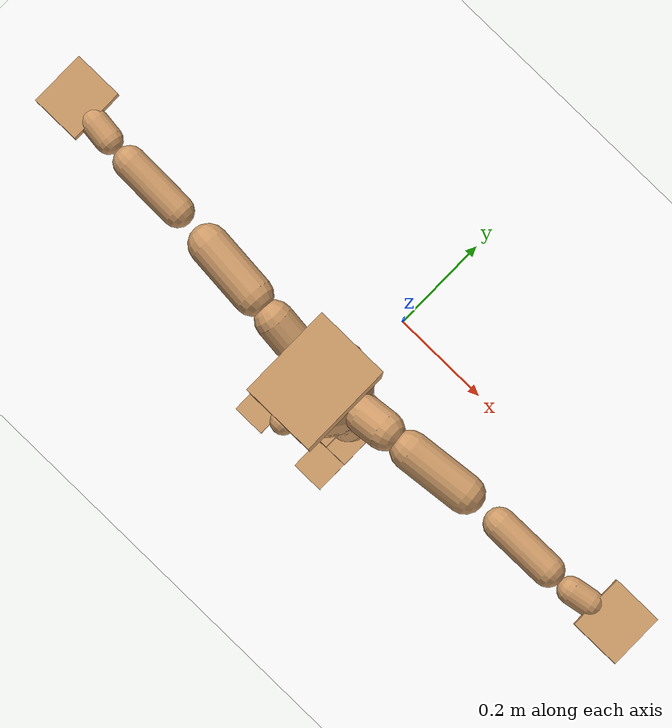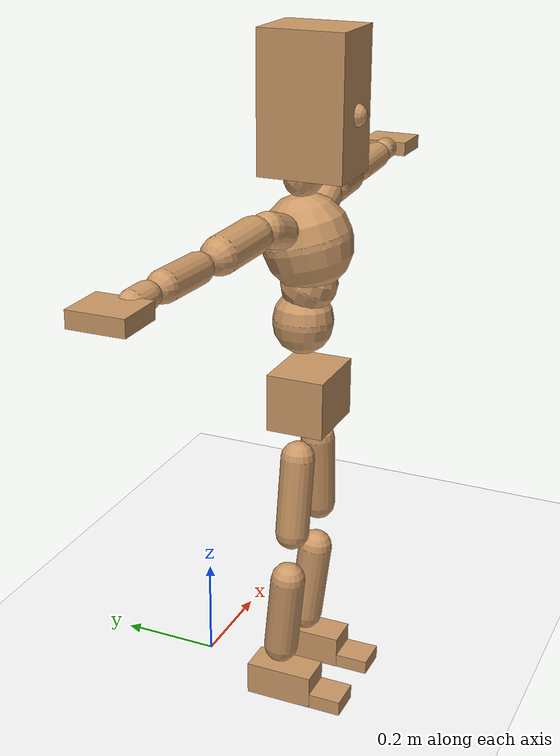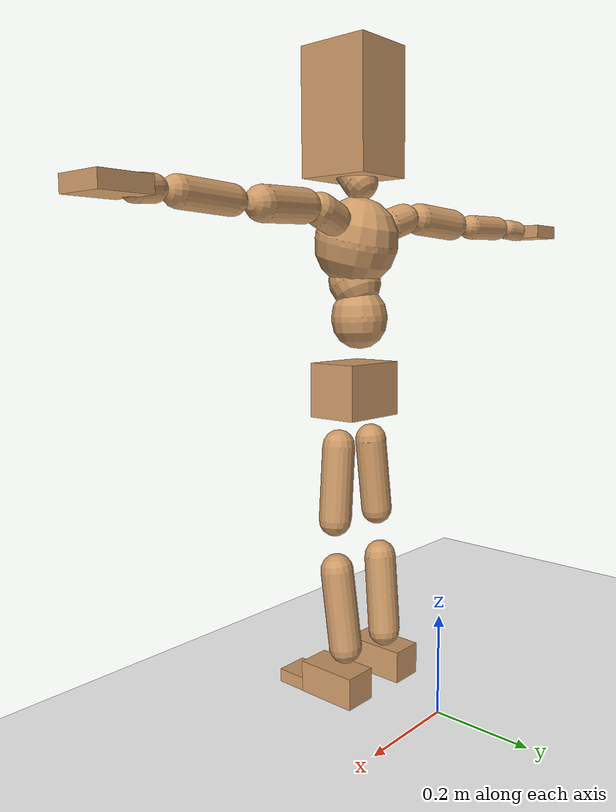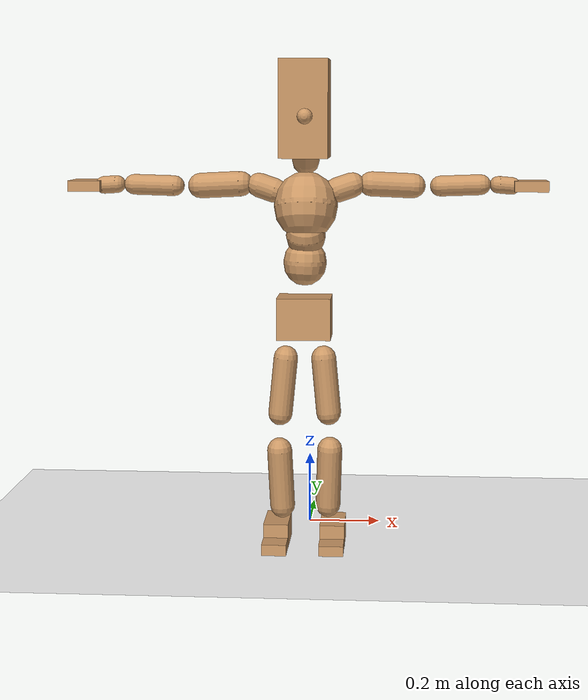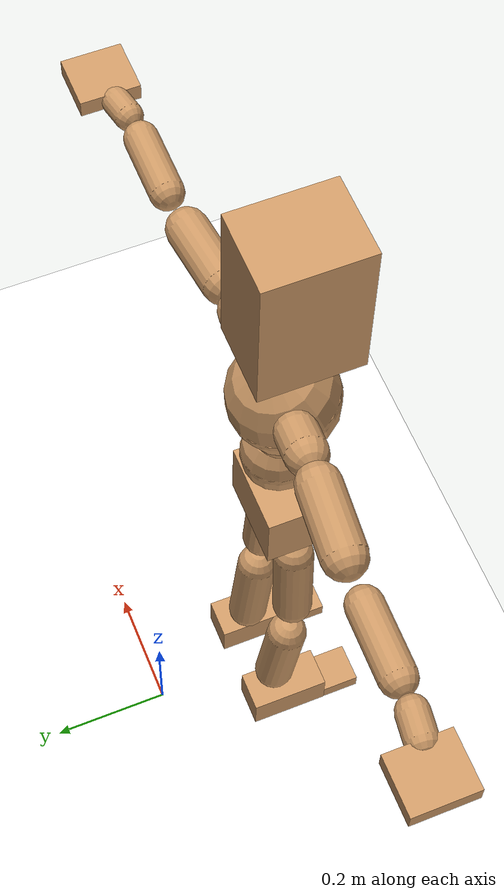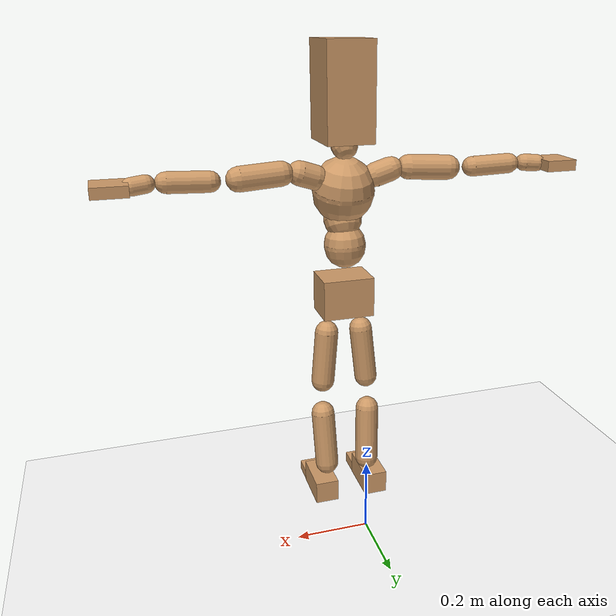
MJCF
<mujoco model="humanoid">
  <option integrator="implicitfast" />

  <visual>
    <global offwidth="1280" offheight="960" />
    <headlight active="1" ambient="0.34 0.34 0.34" diffuse="0.5 0.5 0.5" />
  </visual>

  <default>
    <joint damping="2" stiffness="2" armature="0.01" limited="true" solimplimit="0 .99 .01" />
    <geom condim="1" friction="0.7 0.005 0.0001" solimp=".99 .99 .003" solref="0.015 1" margin="0.001" rgba="0.8 0.6 .4 1" />
    <default class="smplcontact">
      <geom condim="3" friction="1. 0.005 0.0001" solref="0.015 1" solimp="0.98 0.98 0.001" priority="1" />
    </default>
    <default class="stiff_medium">
      <joint stiffness="10" />
    </default>
    <default class="stiff_medium_higher">
      <joint stiffness="50" />
    </default>
    <default class="stiff_high">
      <joint stiffness="100" />
    </default>
  </default>

  <asset>
    <texture type="skybox" builtin="gradient" rgb1="0.99 0.99 0.99" rgb2="0.608 0.828 0.892" width="100" />
    <texture builtin="flat" height="1278" mark="cross" markrgb="1 1 1" name="texgeom" random="0.01" rgb1="0.8 0.6 0.4" rgb2="0.8 0.6 0.4" type="cube" width="127" />
    <texture name="texplane" type="2d" builtin="checker" markrgb="1 1 1" rgb1="0.756 0.772 0.76" rgb2="0.6 0.6 0.6" width="100" height="100" />
    <material name="MatPlane" reflectance="0.5" texture="texplane" texrepeat="1 1" texuniform="true" />
    <material name="geom" texture="texgeom" texuniform="true" />
  </asset>

  <worldbody>
    <light name="tracking_light" pos="0 0 7" dir="0 0 -1" directional="true" cutoff="100" exponent="1" diffuse="1 1 1" specular="0.1 0.1 0.1" mode="trackcom" />
    <camera name="back" pos="0 3 2.4" xyaxes="-1 0 0 0 -1 2" mode="trackcom" />
    <camera name="side" pos="-3 0 2.4" xyaxes="0 -1 0 1 0 2" mode="trackcom" />
    <camera name="front_side" pos="-2.8 -2.8 0.8" xyaxes="0.5 -0.5 0 0.1 0.1 1" mode="trackcom" />
    <geom condim="3" name="floor" pos="0 0 0" rgba="1 1 1 1" size="100 100 .2" type="plane" material="MatPlane" />
    <body name="Pelvis" pos="-0.0018 -0.2233 0.643284" euler="90 0 0">
      <site name="Pelvis" size="0.01" />
      <freejoint name="Pelvis" />
      <geom type="box" pos="0 -0.00942375 -0.00374" size="0.072692 0.056231 0.05644" quat="1.0000 0.0000 0.0000 0.0000" density="3165.830099" name="Pelvis" />
      <body name="L_Hip" pos="0.04726 -0.0711844 -0.004624">
        <joint name="L_Hip_x" type="hinge" pos="0 0 0" axis="1 0 0" stiffness="10" range="-160.0 22.92" class="stiff_medium" damping="15" />
        <joint name="L_Hip_y" type="hinge" pos="0 0 0" axis="0 1 0" stiffness="10" range="-70.0 70.0" class="stiff_medium" damping="10" />
        <joint name="L_Hip_z" type="hinge" pos="0 0 0" axis="0 0 1" stiffness="10" range="-28.65 90.0" class="stiff_medium" damping="10" />
        <geom type="capsule" density="2040.816327" fromto="0.00464797 -0.0506242 -0.000607386 0.018485 -0.202629 -0.00242983" size="0.0335175" name="L_Hip" />
        <body name="L_Knee" pos="0.023133 -0.253253 -0.00303721">
          <joint name="L_Knee_x" type="hinge" pos="0 0 0" axis="1 0 0" range="-5.16 171.89" damping="8" />
          <joint name="L_Knee_y" type="hinge" pos="0 0 0" axis="0 1 0" range="-4.58 6.88" damping="8" />
          <joint name="L_Knee_z" type="hinge" pos="0 0 0" axis="0 0 1" range="-6.88 4.58" damping="8" />
          <geom type="capsule" density="1234.567901" fromto="-0.00182393 -0.0537279 -0.00587526 -0.00735874 -0.214913 -0.0236272" size="0.034083" name="L_Knee" />
          <body name="L_Ankle" pos="-0.00918267 -0.26864 -0.0295024">
            <joint name="L_Ankle_x" type="hinge" pos="0 0 0" axis="1 0 0" range="-45.84 45.84" class="stiff_medium" damping="6" />
            <joint name="L_Ankle_y" type="hinge" pos="0 0 0" axis="0 1 0" range="-74.48 22.92" class="stiff_medium" damping="3" />
            <joint name="L_Ankle_z" type="hinge" pos="0 0 0" axis="0 0 1" range="-4.58 4.58" class="stiff_medium" damping="6" />
            <geom type="box" pos="0.01631 -0.01673 0.0188438" size="0.03381 0.03248 0.066187" quat="1.0000 0.0000 0.0000 0.0000" density="449.071558" name="L_Ankle" class="smplcontact" />
            <body name="L_Toe" pos="0.01848 -0.03906 0.0928955">
              <joint name="L_Toe_x" type="hinge" pos="0 0 0" axis="1 0 0" range="-91.67 22.92" />
              <joint name="L_Toe_y" type="hinge" pos="0 0 0" axis="0 1 0" range="-4.58 4.58" />
              <joint name="L_Toe_z" type="hinge" pos="0 0 0" axis="0 0 1" range="-4.58 4.58" />
              <geom type="box" pos="-0.002085 0.0038225 0.019311" size="0.033221 0.0139 0.0386221" quat="1.0000 0.0000 0.0000 0.0000" density="423.206892" name="L_Toe" class="smplcontact" />
            </body>
          </body>
        </body>
      </body>
      <body name="R_Hip" pos="-0.046036 -0.0704834 -0.002924">
        <joint name="R_Hip_x" type="hinge" pos="0 0 0" axis="1 0 0" stiffness="10" range="-160.0 22.92" class="stiff_medium" damping="15" />
        <joint name="R_Hip_y" type="hinge" pos="0 0 0" axis="0 1 0" stiffness="10" range="-70.0 70.0" class="stiff_medium" damping="10" />
        <joint name="R_Hip_z" type="hinge" pos="0 0 0" axis="0 0 1" stiffness="10" range="-90.0 28.65" class="stiff_medium" damping="10" />
        <geom type="capsule" density="2040.816327" fromto="-0.00518833 -0.0516368 -0.00121055 -0.0206453 -0.206612 -0.00478793" size="0.033027" name="R_Hip" />
        <body name="R_Knee" pos="-0.0258337 -0.258249 -0.00599848">
          <joint name="R_Knee_x" type="hinge" pos="0 0 0" axis="1 0 0" range="-5.16 171.89" damping="8" />
          <joint name="R_Knee_y" type="hinge" pos="0 0 0" axis="0 1 0" range="-6.88 4.58" damping="8" />
          <joint name="R_Knee_z" type="hinge" pos="0 0 0" axis="0 0 1" range="-4.58 6.88" damping="8" />
          <geom type="capsule" density="1234.567901" fromto="0.00215701 -0.0537961 -0.00573452 0.0085018 -0.215116 -0.0228115" size="0.034083" name="R_Knee" />
          <body name="R_Ankle" pos="0.0106588 -0.268912 -0.028546">
            <joint name="R_Ankle_x" type="hinge" pos="0 0 0" axis="1 0 0" range="-45.84 45.84" class="stiff_medium" damping="6" />
            <joint name="R_Ankle_y" type="hinge" pos="0 0 0" axis="0 1 0" range="-22.92 74.48" class="stiff_medium" damping="3" />
            <joint name="R_Ankle_z" type="hinge" pos="0 0 0" axis="0 0 1" range="-4.58 4.58" class="stiff_medium" damping="6" />
            <geom type="box" pos="-0.01484 -0.01218 0.019934" size="0.03381 0.03346 0.0673551" quat="1.0000 0.0000 0.0000 0.0000" density="434.700981" name="R_Ankle" class="smplcontact" />
            <body name="R_Toe" pos="-0.01778 -0.03367 0.0960102">
              <joint name="R_Toe_x" type="hinge" pos="0 0 0" axis="1 0 0" range="-91.67 22.92" />
              <joint name="R_Toe_y" type="hinge" pos="0 0 0" axis="0 1 0" range="-4.58 4.58" />
              <joint name="R_Toe_z" type="hinge" pos="0 0 0" axis="0 0 1" range="-4.58 4.58" />
              <geom type="box" pos="0.002919 0.0031275 0.0176758" size="0.0332905 0.015012 0.0383885" quat="1.0000 0.0000 0.0000 0.0000" density="407.384095" name="R_Toe" class="smplcontact" />
            </body>
          </body>
        </body>
      </body>
      <body name="Torso" pos="-0.0017 0.0848916 -0.018156">
        <joint name="Torso_x" type="hinge" pos="0 0 0" axis="1 0 0" range="-25.78 57.3" class="stiff_medium" damping="15" />
        <joint name="Torso_y" type="hinge" pos="0 0 0" axis="0 1 0" range="-57.3 57.3" class="stiff_high" damping="20" />
        <joint name="Torso_z" type="hinge" pos="0 0 0" axis="0 0 1" range="-34.38 34.38" class="stiff_high" damping="20" />
        <geom type="capsule" density="2040.816327" fromto="0.0019486 0.0475871 0.00038972 0.00233994 0.0581533 0.000467987" size="0.057675" name="Torso" />
        <body name="Spine" pos="0.00428866 0.105819 0.000857731">
          <joint name="Spine_x" type="hinge" pos="0 0 0" axis="1 0 0" stiffness="10" range="-25.78 57.3" class="stiff_medium" damping="15" />
          <joint name="Spine_y" type="hinge" pos="0 0 0" axis="0 1 0" stiffness="10" range="-57.3 57.3" class="stiff_high" damping="8" />
          <joint name="Spine_z" type="hinge" pos="0 0 0" axis="0 0 1" stiffness="20" range="-34.38 34.38" class="stiff_high" damping="12" />
          <geom type="capsule" density="2040.816327" fromto="0.000528228 0.0186196 0.00893992 0.000606496 0.0227678 0.0109749" size="0.0532275" name="Spine" />
          <body name="Chest" pos="0.00113472 0.0413873 0.0199148">
            <joint name="Chest_x" type="hinge" pos="0 0 0" axis="1 0 0" stiffness="10" range="-25.78 57.3" class="stiff_medium" damping="15" />
            <joint name="Chest_y" type="hinge" pos="0 0 0" axis="0 1 0" stiffness="10" range="-57.3 57.3" class="stiff_high" damping="8" />
            <joint name="Chest_z" type="hinge" pos="0 0 0" axis="0 0 1" stiffness="20" range="-34.38 34.38" class="stiff_high" damping="12" />
            <geom type="capsule" density="2040.816327" fromto="-0.000734626 0.0533836 -0.0135204 -0.000812894 0.065202 -0.0165729" size="0.08517" name="Chest" />
            <body name="Neck" pos="-0.00228596 0.167615 -0.0327976">
              <joint name="Neck_x" type="hinge" pos="0 0 0" axis="1 0 0" range="-28.65 57.3" class="stiff_medium_higher" damping="10" />
              <joint name="Neck_y" type="hinge" pos="0 0 0" axis="0 1 0" range="-40.11 40.11" class="stiff_medium_higher" damping="10" />
              <joint name="Neck_z" type="hinge" pos="0 0 0" axis="0 0 1" range="-40.11 40.11" class="stiff_medium_higher" damping="10" />
              <geom type="capsule" density="1000" fromto="0.000776901 0.010122 0.00802144 0.00319078 0.0404902 0.0320045" size="0.036188" name="Neck" />
              <body name="Head" pos="0.00405086 0.0506144 0.0399447">
                <joint name="Head_x" type="hinge" pos="0 0 0" axis="1 0 0" range="-28.65 57.3" class="stiff_medium_higher" damping="2" />
                <joint name="Head_y" type="hinge" pos="0 0 0" axis="0 1 0" range="-40.11 40.11" class="stiff_medium_higher" damping="2" />
                <joint name="Head_z" type="hinge" pos="0 0 0" axis="0 0 1" range="-40.11 40.11" class="stiff_medium_higher" damping="2" />
                <geom type="box" pos="-0.004494 0.0981319 -0.012412" size="0.064842 0.129274 0.08132" quat="1.0000 0.0000 0.0000 0.0000" density="1018.069894" name="Head" />
                <geom type="capsule" name="nose" size="0.0214 0.0107" pos="0 0.0784159 0.0535" quat="1 0 0 0" mass="0" contype="0" conaffinity="0" />
              </body>
            </body>
            <body name="L_Thorax" pos="0.0670343 0.0952417 -0.0268663">
              <joint name="L_Thorax_x" type="hinge" pos="0 0 0" axis="1 0 0" range="-10.89 4.58" class="stiff_medium_higher" damping="20" />
              <joint name="L_Thorax_y" type="hinge" pos="0 0 0" axis="0 1 0" range="-28.65 17.19" class="stiff_medium_higher" damping="20" />
              <joint name="L_Thorax_z" type="hinge" pos="0 0 0" axis="0 0 1" range="-31.51 40.11" class="stiff_medium_higher" damping="20" />
              <geom type="capsule" density="1000" fromto="0.0139578 0.00467817 -0.00137638 0.0558302 0.0187123 -0.00544091" size="0.0336045" name="L_Thorax" />
              <body name="L_Shoulder" pos="0.069788 0.0233905 -0.00681729">
                <joint name="L_Shoulder_x" type="hinge" pos="0 0 0" axis="1 0 0" range="-97.4 97.4" class="stiff_medium" damping="6" />
                <joint name="L_Shoulder_y" type="hinge" pos="0 0 0" axis="0 1 0" range="-108.86 80.21" class="stiff_medium" damping="6" />
                <joint name="L_Shoulder_z" type="hinge" pos="0 0 0" axis="0 0 1" range="-97.4 85.94" class="stiff_medium" damping="6" />
                <geom type="capsule" density="1000" fromto="0.0372435 -0.00186081 -0.00394655 0.149045 -0.00731454 -0.0157869" size="0.0333465" name="L_Shoulder" />
                <body name="L_Elbow" pos="0.186289 -0.00917535 -0.0197334">
                  <joint name="L_Elbow_x" type="hinge" pos="0 0 0" axis="1 0 0" range="-17.19 4.58" damping="5" />
                  <joint name="L_Elbow_y" type="hinge" pos="0 0 0" axis="0 1 0" range="-180.0 17.19" damping="5" />
                  <joint name="L_Elbow_z" type="hinge" pos="0 0 0" axis="0 0 1" range="-100.84 4.58" damping="5" />
                  <geom type="capsule" density="1000" fromto="0.0357363 0.00129158 -0.000144761 0.143089 0.0051666 -0.000647078" size="0.02754" name="L_Elbow" />
                  <body name="L_Wrist" pos="0.178825 0.00645819 -0.000859839">
                    <joint name="L_Wrist_x" type="hinge" pos="0 0 0" axis="1 0 0" range="-180.0 22.92" />
                    <joint name="L_Wrist_y" type="hinge" pos="0 0 0" axis="0 1 0" range="-17.19 17.19" />
                    <joint name="L_Wrist_z" type="hinge" pos="0 0 0" axis="0 0 1" range="-22.92 22.92" />
                    <geom type="capsule" density="1000" fromto="0.0120557 -0.00114774 -0.0021528 0.0482225 -0.00466397 -0.00861117" size="0.023214" name="L_Wrist" class="smplcontact" />
                    <body name="L_Hand" pos="0.0602783 -0.00588472 -0.010691">
                      <joint name="L_Hand_x" type="hinge" pos="0 0 0" axis="1 0 0" range="-17.19 17.19" />
                      <joint name="L_Hand_y" type="hinge" pos="0 0 0" axis="0 1 0" range="-51.57 51.57" />
                      <joint name="L_Hand_z" type="hinge" pos="0 0 0" axis="0 0 1" range="-91.67 91.67" />
                      <geom type="box" pos="0.0381969 0.000915 -0.005307" size="0.045325 0.014457 0.049227" quat="1.0000 0.0000 0.0000 0.0000" density="400.552564" name="L_Hand" class="smplcontact" />
                    </body>
                  </body>
                </body>
              </body>
            </body>
            <body name="R_Thorax" pos="-0.069476 0.0928193 -0.0307023">
              <joint name="R_Thorax_x" type="hinge" pos="0 0 0" axis="1 0 0" range="-10.89 4.58" class="stiff_medium_higher" damping="20" />
              <joint name="R_Thorax_y" type="hinge" pos="0 0 0" axis="0 1 0" range="-17.19 28.65" class="stiff_medium_higher" damping="20" />
              <joint name="R_Thorax_z" type="hinge" pos="0 0 0" axis="0 0 1" range="-40.11 31.51" class="stiff_medium_higher" damping="20" />
              <geom type="capsule" density="1000" fromto="-0.014724 0.00498469 -0.00138444 -0.0588971 0.0199391 -0.00560235" size="0.0329595" name="R_Thorax" />
              <body name="R_Shoulder" pos="-0.0736247 0.0249895 -0.00698714">
                <joint name="R_Shoulder_x" type="hinge" pos="0 0 0" axis="1 0 0" range="-97.4 97.4" class="stiff_medium" damping="6" />
                <joint name="R_Shoulder_y" type="hinge" pos="0 0 0" axis="0 1 0" range="-80.21 108.86" class="stiff_medium" damping="6" />
                <joint name="R_Shoulder_z" type="hinge" pos="0 0 0" axis="0 0 1" range="-85.94 97.4" class="stiff_medium" damping="6" />
                <geom type="capsule" density="1000" fromto="-0.0363825 -0.00193486 -0.00308287 -0.145672 -0.00767563 -0.0122681" size="0.0342495" name="R_Shoulder" />
                <body name="R_Elbow" pos="-0.182055 -0.00954596 -0.0153509">
                  <joint name="R_Elbow_x" type="hinge" pos="0 0 0" axis="1 0 0" range="-17.19 4.58" damping="5" />
                  <joint name="R_Elbow_y" type="hinge" pos="0 0 0" axis="0 1 0" range="-17.19 180.0" damping="5" />
                  <joint name="R_Elbow_z" type="hinge" pos="0 0 0" axis="0 0 1" range="-4.58 100.84" damping="5" />
                  <geom type="capsule" density="1000" fromto="-0.0366693 0.00114573 -0.000789412 -0.146533 0.00444667 -0.00315748" size="0.027744" name="R_Elbow" />
                  <body name="R_Wrist" pos="-0.183203 0.0055924 -0.00401489">
                    <joint name="R_Wrist_x" type="hinge" pos="0 0 0" axis="1 0 0" range="-180.0 22.92" />
                    <joint name="R_Wrist_y" type="hinge" pos="0 0 0" axis="0 1 0" range="-17.19 17.19" />
                    <joint name="R_Wrist_z" type="hinge" pos="0 0 0" axis="0 0 1" range="-22.92 22.92" />
                    <geom type="capsule" density="1000" fromto="-0.0121274 -0.00086073 -0.00150741 -0.0485813 -0.00351584 -0.00595651" size="0.023798" name="R_Wrist" class="smplcontact" />
                    <body name="R_Hand" pos="-0.0607088 -0.00437658 -0.00739094">
                      <joint name="R_Hand_x" type="hinge" pos="0 0 0" axis="1 0 0" range="-17.19 17.19" />
                      <joint name="R_Hand_y" type="hinge" pos="0 0 0" axis="0 1 0" range="-51.57 51.57" />
                      <joint name="R_Hand_z" type="hinge" pos="0 0 0" axis="0 0 1" range="-91.67 91.67" />
                      <geom type="box" pos="-0.0357951 -0.0008235 -0.0072285" size="0.0440853 0.015006 0.049959" quat="1.0000 0.0000 0.0000 0.0000" density="403.679611" name="R_Hand" class="smplcontact" />
                    </body>
                  </body>
                </body>
              </body>
            </body>
          </body>
        </body>
      </body>
    </body>
  </worldbody>
  <actuator>
    <general name="L_Hip_x" joint="L_Hip_x" biastype="affine" gainprm="287.33006409732246" biasprm="-215.3247604770444 -180 -2.0" ctrllimited="true" ctrlrange="-1 1" forcerange="-360 360" />
    <general name="L_Hip_y" joint="L_Hip_y" biastype="affine" gainprm="219.9114857512855" biasprm="0.0 -180 -2.0" ctrllimited="true" ctrlrange="-1 1" forcerange="-360 360" />
    <general name="L_Hip_z" joint="L_Hip_z" biastype="affine" gainprm="186.3749841742145" biasprm="96.3683546488669 -180 -2.0" ctrllimited="true" ctrlrange="-1 1" forcerange="-360 360" />
    <general name="L_Knee_x" joint="L_Knee_x" biastype="affine" gainprm="278.10948965903646" biasprm="261.8988715665131 -180 -2.0" ctrllimited="true" ctrlrange="-1 1" forcerange="-360 360" />
    <general name="L_Knee_y" joint="L_Knee_y" biastype="affine" gainprm="18.001325905069514" biasprm="3.612831551628262 -180 -2.0" ctrllimited="true" ctrlrange="-1 1" forcerange="-360 360" />
    <general name="L_Knee_z" joint="L_Knee_z" biastype="affine" gainprm="18.001325905069514" biasprm="-3.612831551628262 -180 -2.0" ctrllimited="true" ctrlrange="-1 1" forcerange="-360 360" />
    <general name="L_Ankle_x" joint="L_Ankle_x" biastype="affine" gainprm="72.00530362027807" biasprm="0.0 -90 -2.0" ctrllimited="true" ctrlrange="-1 1" forcerange="-180 180" />
    <general name="L_Ankle_y" joint="L_Ankle_y" biastype="affine" gainprm="76.49778111491148" biasprm="-40.49512930477244 -90 -2.0" ctrllimited="true" ctrlrange="-1 1" forcerange="-180 180" />
    <general name="L_Ankle_z" joint="L_Ankle_z" biastype="affine" gainprm="7.1942471767206255" biasprm="0.0 -90 -2.0" ctrllimited="true" ctrlrange="-1 1" forcerange="-180 180" />
    <general name="L_Toe_x" joint="L_Toe_x" biastype="affine" gainprm="71.99902043497087" biasprm="-43.19689898685965 -72 -0.8" ctrllimited="true" ctrlrange="-1 1" forcerange="-144 144" />
    <general name="L_Toe_y" joint="L_Toe_y" biastype="affine" gainprm="5.755397741376501" biasprm="0.0 -72 -0.8" ctrllimited="true" ctrlrange="-1 1" forcerange="-144 144" />
    <general name="L_Toe_z" joint="L_Toe_z" biastype="affine" gainprm="5.755397741376501" biasprm="0.0 -72 -0.8" ctrllimited="true" ctrlrange="-1 1" forcerange="-144 144" />
    <general name="R_Hip_x" joint="R_Hip_x" biastype="affine" gainprm="287.33006409732246" biasprm="-215.3247604770444 -180 -2.0" ctrllimited="true" ctrlrange="-1 1" forcerange="-360 360" />
    <general name="R_Hip_y" joint="R_Hip_y" biastype="affine" gainprm="219.9114857512855" biasprm="0.0 -180 -2.0" ctrllimited="true" ctrlrange="-1 1" forcerange="-360 360" />
    <general name="R_Hip_z" joint="R_Hip_z" biastype="affine" gainprm="186.3749841742145" biasprm="-96.3683546488669 -180 -2.0" ctrllimited="true" ctrlrange="-1 1" forcerange="-360 360" />
    <general name="R_Knee_x" joint="R_Knee_x" biastype="affine" gainprm="278.10948965903646" biasprm="261.8988715665131 -180 -2.0" ctrllimited="true" ctrlrange="-1 1" forcerange="-360 360" />
    <general name="R_Knee_y" joint="R_Knee_y" biastype="affine" gainprm="18.001325905069514" biasprm="-3.612831551628262 -180 -2.0" ctrllimited="true" ctrlrange="-1 1" forcerange="-360 360" />
    <general name="R_Knee_z" joint="R_Knee_z" biastype="affine" gainprm="18.001325905069514" biasprm="3.612831551628262 -180 -2.0" ctrllimited="true" ctrlrange="-1 1" forcerange="-360 360" />
    <general name="R_Ankle_x" joint="R_Ankle_x" biastype="affine" gainprm="72.00530362027807" biasprm="0.0 -90 -2.0" ctrllimited="true" ctrlrange="-1 1" forcerange="-180 180" />
    <general name="R_Ankle_y" joint="R_Ankle_y" biastype="affine" gainprm="76.49778111491148" biasprm="40.49512930477244 -90 -2.0" ctrllimited="true" ctrlrange="-1 1" forcerange="-180 180" />
    <general name="R_Ankle_z" joint="R_Ankle_z" biastype="affine" gainprm="7.1942471767206255" biasprm="0.0 -90 -2.0" ctrllimited="true" ctrlrange="-1 1" forcerange="-180 180" />
    <general name="R_Toe_x" joint="R_Toe_x" biastype="affine" gainprm="71.99902043497087" biasprm="-43.19689898685965 -72 -0.8" ctrllimited="true" ctrlrange="-1 1" forcerange="-144 144" />
    <general name="R_Toe_y" joint="R_Toe_y" biastype="affine" gainprm="5.755397741376501" biasprm="0.0 -72 -0.8" ctrllimited="true" ctrlrange="-1 1" forcerange="-144 144" />
    <general name="R_Toe_z" joint="R_Toe_z" biastype="affine" gainprm="5.755397741376501" biasprm="0.0 -72 -0.8" ctrllimited="true" ctrlrange="-1 1" forcerange="-144 144" />
    <general name="Torso_x" joint="Torso_x" biastype="affine" gainprm="174.00234510682668" biasprm="66.0153336274335 -240 -4.0" ctrllimited="true" ctrlrange="-1 1" forcerange="-360 360" />
    <general name="Torso_y" joint="Torso_y" biastype="affine" gainprm="240.0176787342602" biasprm="0.0 -240 -4.0" ctrllimited="true" ctrlrange="-1 1" forcerange="-360 360" />
    <general name="Torso_z" joint="Torso_z" biastype="affine" gainprm="144.01060724055614" biasprm="0.0 -240 -4.0" ctrllimited="true" ctrlrange="-1 1" forcerange="-360 360" />
    <general name="Spine_x" joint="Spine_x" biastype="affine" gainprm="174.00234510682668" biasprm="66.0153336274335 -240 -4.0" ctrllimited="true" ctrlrange="-1 1" forcerange="-360 360" />
    <general name="Spine_y" joint="Spine_y" biastype="affine" gainprm="240.0176787342602" biasprm="0.0 -240 -4.0" ctrllimited="true" ctrlrange="-1 1" forcerange="-360 360" />
    <general name="Spine_z" joint="Spine_z" biastype="affine" gainprm="144.01060724055614" biasprm="0.0 -240 -4.0" ctrllimited="true" ctrlrange="-1 1" forcerange="-360 360" />
    <general name="Chest_x" joint="Chest_x" biastype="affine" gainprm="174.00234510682668" biasprm="66.0153336274335 -240 -4.0" ctrllimited="true" ctrlrange="-1 1" forcerange="-360 360" />
    <general name="Chest_y" joint="Chest_y" biastype="affine" gainprm="240.0176787342602" biasprm="0.0 -240 -4.0" ctrllimited="true" ctrlrange="-1 1" forcerange="-360 360" />
    <general name="Chest_z" joint="Chest_z" biastype="affine" gainprm="144.01060724055614" biasprm="0.0 -240 -4.0" ctrllimited="true" ctrlrange="-1 1" forcerange="-360 360" />
    <general name="Neck_x" joint="Neck_x" biastype="affine" gainprm="27.00198885760427" biasprm="9.000662952534757 -36 -0.8" ctrllimited="true" ctrlrange="-1 1" forcerange="-72 72" />
    <general name="Neck_y" joint="Neck_y" biastype="affine" gainprm="25.20185626709732" biasprm="0.0 -36 -0.8" ctrllimited="true" ctrlrange="-1 1" forcerange="-72 72" />
    <general name="Neck_z" joint="Neck_z" biastype="affine" gainprm="25.20185626709732" biasprm="0.0 -36 -0.8" ctrllimited="true" ctrlrange="-1 1" forcerange="-72 72" />
    <general name="Head_x" joint="Head_x" biastype="affine" gainprm="18.001325905069514" biasprm="6.000441968356505 -24 -0.8" ctrllimited="true" ctrlrange="-1 1" forcerange="-48 48" />
    <general name="Head_y" joint="Head_y" biastype="affine" gainprm="16.801237511398213" biasprm="0.0 -24 -0.8" ctrllimited="true" ctrlrange="-1 1" forcerange="-48 48" />
    <general name="Head_z" joint="Head_z" biastype="affine" gainprm="16.801237511398213" biasprm="0.0 -24 -0.8" ctrllimited="true" ctrlrange="-1 1" forcerange="-48 48" />
    <general name="L_Thorax_x" joint="L_Thorax_x" biastype="affine" gainprm="16.200146117011364" biasprm="-6.6078165480505335 -120 -1.6" ctrllimited="true" ctrlrange="-1 1" forcerange="-240 240" />
    <general name="L_Thorax_y" joint="L_Thorax_y" biastype="affine" gainprm="48.00353574685204" biasprm="-12.00088393671301 -120 -1.6" ctrllimited="true" ctrlrange="-1 1" forcerange="-240 240" />
    <general name="L_Thorax_z" joint="L_Thorax_z" biastype="affine" gainprm="75.00028861670033" biasprm="9.00589894029074 -120 -1.6" ctrllimited="true" ctrlrange="-1 1" forcerange="-240 240" />
    <general name="L_Shoulder_x" joint="L_Shoulder_x" biastype="affine" gainprm="81.5976331892389" biasprm="0.0 -48 -1.6" ctrllimited="true" ctrlrange="-1 1" forcerange="-96 96" />
    <general name="L_Shoulder_y" joint="L_Shoulder_y" biastype="affine" gainprm="79.19745640189629" biasprm="-12.00088393671301 -48 -1.6" ctrllimited="true" ctrlrange="-1 1" forcerange="-96 96" />
    <general name="L_Shoulder_z" joint="L_Shoulder_z" biastype="affine" gainprm="76.79727961455369" biasprm="-4.800353574685214 -48 -1.6" ctrllimited="true" ctrlrange="-1 1" forcerange="-96 96" />
    <general name="L_Elbow_x" joint="L_Elbow_x" biastype="affine" gainprm="13.67849441372996" biasprm="-7.923096672353461 -72 -0.8" ctrllimited="true" ctrlrange="-1 1" forcerange="-144 144" />
    <general name="L_Elbow_y" joint="L_Elbow_y" biastype="affine" gainprm="123.89813107227425" biasprm="-102.29653998619085 -72 -0.8" ctrllimited="true" ctrlrange="-1 1" forcerange="-144 144" />
    <general name="L_Elbow_z" joint="L_Elbow_z" biastype="affine" gainprm="66.23733950828719" biasprm="-60.4819417669107 -72 -0.8" ctrllimited="true" ctrlrange="-1 1" forcerange="-144 144" />
    <general name="L_Wrist_x" joint="L_Wrist_x" biastype="affine" gainprm="21.24973270888136" biasprm="-16.449379134196157 -12 -0.8" ctrllimited="true" ctrlrange="-1 1" forcerange="-24 24" />
    <general name="L_Wrist_y" joint="L_Wrist_y" biastype="affine" gainprm="3.6002651810139037" biasprm="0.0 -12 -0.8" ctrllimited="true" ctrlrange="-1 1" forcerange="-24 24" />
    <general name="L_Wrist_z" joint="L_Wrist_z" biastype="affine" gainprm="4.800353574685205" biasprm="0.0 -12 -0.8" ctrllimited="true" ctrlrange="-1 1" forcerange="-24 24" />
    <general name="L_Hand_x" joint="L_Hand_x" biastype="affine" gainprm="3.6002651810139037" biasprm="0.0 -12 -0.8" ctrllimited="true" ctrlrange="-1 1" forcerange="-24 24" />
    <general name="L_Hand_y" joint="L_Hand_y" biastype="affine" gainprm="10.800795543041708" biasprm="0.0 -12 -0.8" ctrllimited="true" ctrlrange="-1 1" forcerange="-24 24" />
    <general name="L_Hand_z" joint="L_Hand_z" biastype="affine" gainprm="19.199319903638422" biasprm="0.0 -12 -0.8" ctrllimited="true" ctrlrange="-1 1" forcerange="-24 24" />
    <general name="R_Thorax_x" joint="R_Thorax_x" biastype="affine" gainprm="16.200146117011364" biasprm="-6.6078165480505335 -120 -1.6" ctrllimited="true" ctrlrange="-1 1" forcerange="-240 240" />
    <general name="R_Thorax_y" joint="R_Thorax_y" biastype="affine" gainprm="48.00353574685204" biasprm="12.000883936713002 -120 -1.6" ctrllimited="true" ctrlrange="-1 1" forcerange="-240 240" />
    <general name="R_Thorax_z" joint="R_Thorax_z" biastype="affine" gainprm="75.00028861670033" biasprm="-9.00589894029074 -120 -1.6" ctrllimited="true" ctrlrange="-1 1" forcerange="-240 240" />
    <general name="R_Shoulder_x" joint="R_Shoulder_x" biastype="affine" gainprm="81.5976331892389" biasprm="0.0 -48 -1.6" ctrllimited="true" ctrlrange="-1 1" forcerange="-96 96" />
    <general name="R_Shoulder_y" joint="R_Shoulder_y" biastype="affine" gainprm="79.19745640189629" biasprm="12.00088393671301 -48 -1.6" ctrllimited="true" ctrlrange="-1 1" forcerange="-96 96" />
    <general name="R_Shoulder_z" joint="R_Shoulder_z" biastype="affine" gainprm="76.79727961455369" biasprm="4.800353574685204 -48 -1.6" ctrllimited="true" ctrlrange="-1 1" forcerange="-96 96" />
    <general name="R_Elbow_x" joint="R_Elbow_x" biastype="affine" gainprm="13.67849441372996" biasprm="-7.923096672353461 -72 -0.8" ctrllimited="true" ctrlrange="-1 1" forcerange="-144 144" />
    <general name="R_Elbow_y" joint="R_Elbow_y" biastype="affine" gainprm="123.89813107227425" biasprm="102.29653998619085 -72 -0.8" ctrllimited="true" ctrlrange="-1 1" forcerange="-144 144" />
    <general name="R_Elbow_z" joint="R_Elbow_z" biastype="affine" gainprm="66.23733950828719" biasprm="60.481941766910694 -72 -0.8" ctrllimited="true" ctrlrange="-1 1" forcerange="-144 144" />
    <general name="R_Wrist_x" joint="R_Wrist_x" biastype="affine" gainprm="21.24973270888136" biasprm="-16.449379134196157 -12 -0.8" ctrllimited="true" ctrlrange="-1 1" forcerange="-24 24" />
    <general name="R_Wrist_y" joint="R_Wrist_y" biastype="affine" gainprm="3.6002651810139037" biasprm="0.0 -12 -0.8" ctrllimited="true" ctrlrange="-1 1" forcerange="-24 24" />
    <general name="R_Wrist_z" joint="R_Wrist_z" biastype="affine" gainprm="4.800353574685205" biasprm="0.0 -12 -0.8" ctrllimited="true" ctrlrange="-1 1" forcerange="-24 24" />
    <general name="R_Hand_x" joint="R_Hand_x" biastype="affine" gainprm="3.6002651810139037" biasprm="0.0 -12 -0.8" ctrllimited="true" ctrlrange="-1 1" forcerange="-24 24" />
    <general name="R_Hand_y" joint="R_Hand_y" biastype="affine" gainprm="10.800795543041708" biasprm="0.0 -12 -0.8" ctrllimited="true" ctrlrange="-1 1" forcerange="-24 24" />
    <general name="R_Hand_z" joint="R_Hand_z" biastype="affine" gainprm="19.199319903638422" biasprm="0.0 -12 -0.8" ctrllimited="true" ctrlrange="-1 1" forcerange="-24 24" />
  </actuator>
  <contact>
    <exclude body1="Torso" body2="Chest" />
    <exclude body1="Head" body2="Chest" />
    <exclude body1="R_Knee" body2="R_Toe" />
    <exclude body1="R_Knee" body2="L_Ankle" />
    <exclude body1="R_Knee" body2="L_Toe" />
    <exclude body1="L_Knee" body2="L_Toe" />
    <exclude body1="L_Knee" body2="R_Ankle" />
    <exclude body1="L_Knee" body2="R_Toe" />
    <exclude body1="L_Shoulder" body2="Chest" />
    <exclude body1="R_Shoulder" body2="Chest" />
  </contact>
  <sensor>
    <framelinvel name="sensor_Pelvis_framelinvel" objtype="xbody" objname="Pelvis" />
    <framelinvel name="sensor_L_Hip_framelinvel" objtype="xbody" objname="L_Hip" />
    <framelinvel name="sensor_L_Knee_framelinvel" objtype="xbody" objname="L_Knee" />
    <framelinvel name="sensor_L_Ankle_framelinvel" objtype="xbody" objname="L_Ankle" />
    <framelinvel name="sensor_L_Toe_framelinvel" objtype="xbody" objname="L_Toe" />
    <framelinvel name="sensor_R_Hip_framelinvel" objtype="xbody" objname="R_Hip" />
    <framelinvel name="sensor_R_Knee_framelinvel" objtype="xbody" objname="R_Knee" />
    <framelinvel name="sensor_R_Ankle_framelinvel" objtype="xbody" objname="R_Ankle" />
    <framelinvel name="sensor_R_Toe_framelinvel" objtype="xbody" objname="R_Toe" />
    <framelinvel name="sensor_Torso_framelinvel" objtype="xbody" objname="Torso" />
    <framelinvel name="sensor_Spine_framelinvel" objtype="xbody" objname="Spine" />
    <framelinvel name="sensor_Chest_framelinvel" objtype="xbody" objname="Chest" />
    <framelinvel name="sensor_Neck_framelinvel" objtype="xbody" objname="Neck" />
    <framelinvel name="sensor_Head_framelinvel" objtype="xbody" objname="Head" />
    <framelinvel name="sensor_L_Thorax_framelinvel" objtype="xbody" objname="L_Thorax" />
    <framelinvel name="sensor_L_Shoulder_framelinvel" objtype="xbody" objname="L_Shoulder" />
    <framelinvel name="sensor_L_Elbow_framelinvel" objtype="xbody" objname="L_Elbow" />
    <framelinvel name="sensor_L_Wrist_framelinvel" objtype="xbody" objname="L_Wrist" />
    <framelinvel name="sensor_L_Hand_framelinvel" objtype="xbody" objname="L_Hand" />
    <framelinvel name="sensor_R_Thorax_framelinvel" objtype="xbody" objname="R_Thorax" />
    <framelinvel name="sensor_R_Shoulder_framelinvel" objtype="xbody" objname="R_Shoulder" />
    <framelinvel name="sensor_R_Elbow_framelinvel" objtype="xbody" objname="R_Elbow" />
    <framelinvel name="sensor_R_Wrist_framelinvel" objtype="xbody" objname="R_Wrist" />
    <framelinvel name="sensor_R_Hand_framelinvel" objtype="xbody" objname="R_Hand" />
    <frameangvel name="sensor_Pelvis_frameangvel" objtype="xbody" objname="Pelvis" />
    <frameangvel name="sensor_L_Hip_frameangvel" objtype="xbody" objname="L_Hip" />
    <frameangvel name="sensor_L_Knee_frameangvel" objtype="xbody" objname="L_Knee" />
    <frameangvel name="sensor_L_Ankle_frameangvel" objtype="xbody" objname="L_Ankle" />
    <frameangvel name="sensor_L_Toe_frameangvel" objtype="xbody" objname="L_Toe" />
    <frameangvel name="sensor_R_Hip_frameangvel" objtype="xbody" objname="R_Hip" />
    <frameangvel name="sensor_R_Knee_frameangvel" objtype="xbody" objname="R_Knee" />
    <frameangvel name="sensor_R_Ankle_frameangvel" objtype="xbody" objname="R_Ankle" />
    <frameangvel name="sensor_R_Toe_frameangvel" objtype="xbody" objname="R_Toe" />
    <frameangvel name="sensor_Torso_frameangvel" objtype="xbody" objname="Torso" />
    <frameangvel name="sensor_Spine_frameangvel" objtype="xbody" objname="Spine" />
    <frameangvel name="sensor_Chest_frameangvel" objtype="xbody" objname="Chest" />
    <frameangvel name="sensor_Neck_frameangvel" objtype="xbody" objname="Neck" />
    <frameangvel name="sensor_Head_frameangvel" objtype="xbody" objname="Head" />
    <frameangvel name="sensor_L_Thorax_frameangvel" objtype="xbody" objname="L_Thorax" />
    <frameangvel name="sensor_L_Shoulder_frameangvel" objtype="xbody" objname="L_Shoulder" />
    <frameangvel name="sensor_L_Elbow_frameangvel" objtype="xbody" objname="L_Elbow" />
    <frameangvel name="sensor_L_Wrist_frameangvel" objtype="xbody" objname="L_Wrist" />
    <frameangvel name="sensor_L_Hand_frameangvel" objtype="xbody" objname="L_Hand" />
    <frameangvel name="sensor_R_Thorax_frameangvel" objtype="xbody" objname="R_Thorax" />
    <frameangvel name="sensor_R_Shoulder_frameangvel" objtype="xbody" objname="R_Shoulder" />
    <frameangvel name="sensor_R_Elbow_frameangvel" objtype="xbody" objname="R_Elbow" />
    <frameangvel name="sensor_R_Wrist_frameangvel" objtype="xbody" objname="R_Wrist" />
    <frameangvel name="sensor_R_Hand_frameangvel" objtype="xbody" objname="R_Hand" />
    <subtreelinvel name="Chest_subtreelinvel" body="Chest" />
    <gyro name="Pelvis_gyro" site="Pelvis" />
  </sensor>
</mujoco>
